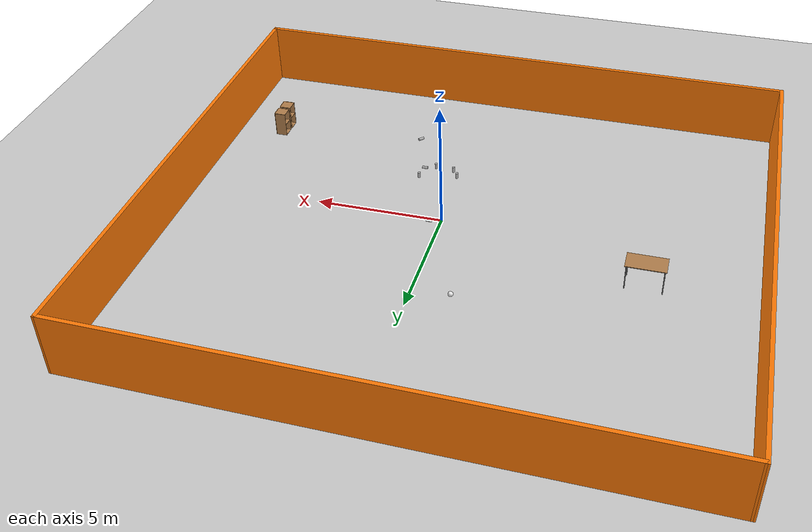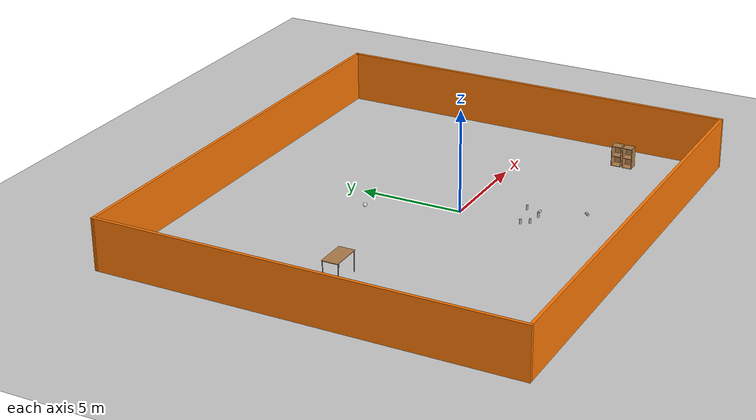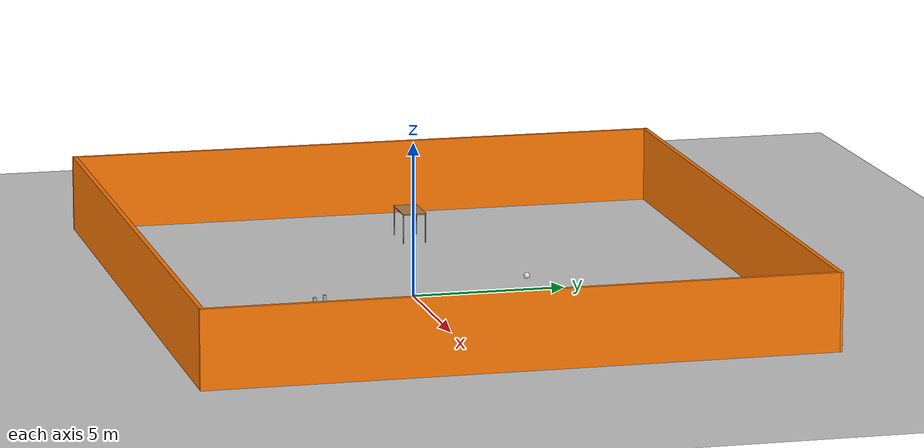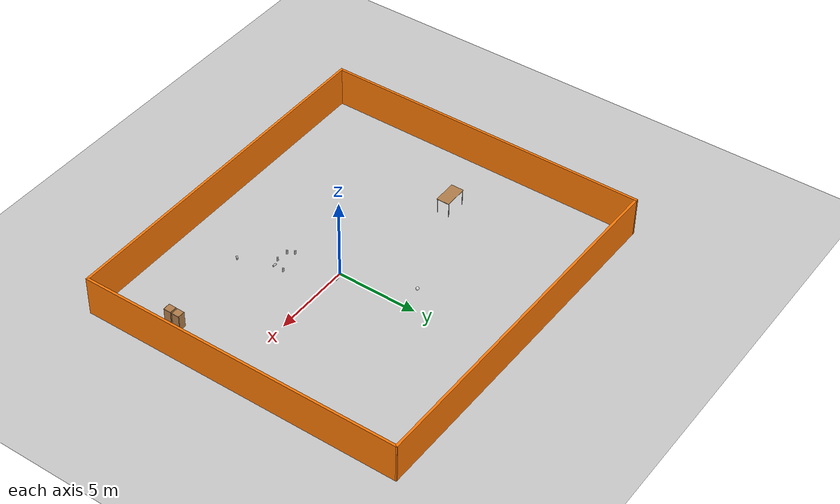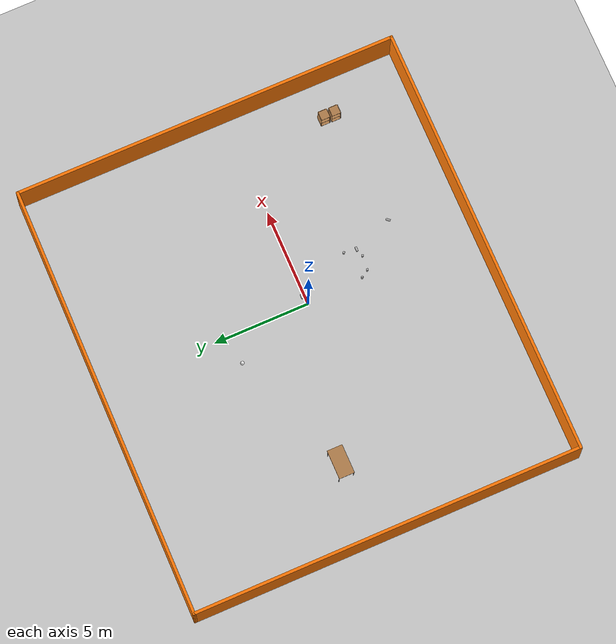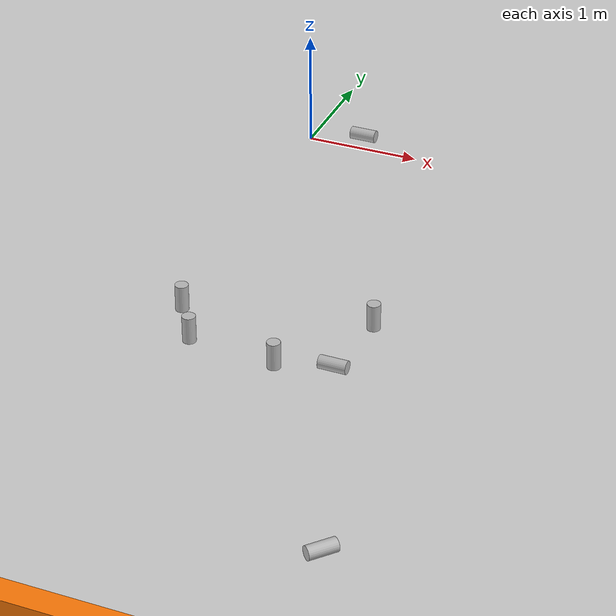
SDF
<sdf version="1.6">
 <world name="default">
  <plugin name="hello" filename="libhello.so"/>
  <light name="sun" type="directional">
   <pose>0 0 10 0 -0 0</pose>
   <diffuse>0.8 0.8 0.8 1</diffuse>
   <specular>0.2 0.2 0.2 1</specular>
   <attenuation>
    <range>1000</range>
    <constant>0.9</constant>
    <linear>0.01</linear>
    <quadratic>0.001</quadratic>
   </attenuation>
   <direction>-0.5 0.1 -0.9</direction>
  </light>
  <model name="ground_plane">
   <static>1</static>
   <link name="link">
    <collision name="collision">
     <geometry><plane><normal>0 0 1</normal><size>100 100</size></plane></geometry>
     <surface>
      <contact><collide_bitmask>65535</collide_bitmask></contact>
      <friction><ode><mu>100</mu><mu2>50</mu2></ode></friction>
     </surface>
    </collision>
    <visual name="visual">
     <cast_shadows>0</cast_shadows>
     <geometry><plane><normal>0 0 1</normal><size>100 100</size></plane></geometry>
     <material>
      <script><uri>file://media/materials/scripts/gazebo.material</uri><name>Gazebo/Grey</name></script>
     </material>
    </visual>
   </link>
  </model>
  <gravity>0 0 -9.8</gravity>
  <magnetic_field>6e-06 2.3e-05 -4.2e-05</magnetic_field>
  <atmosphere type="adiabatic"/>
  <physics name="default_physics" default="0" type="ode">
   <max_step_size>0.001</max_step_size>
   <real_time_factor>1</real_time_factor>
   <real_time_update_rate>1000</real_time_update_rate>
  </physics>
  <scene><ambient>0.4 0.4 0.4 1</ambient><background>0.7 0.7 0.7 1</background><shadows>1</shadows></scene>
  <spherical_coordinates>
   <surface_model>EARTH_WGS84</surface_model>
   <latitude_deg>0</latitude_deg>
   <longitude_deg>0</longitude_deg>
   <elevation>0</elevation>
   <heading_deg>0</heading_deg>
  </spherical_coordinates>
  <model name="table">
   <static>1</static>
   <link name="link">
    <collision name="surface">
     <pose>0 0 1 0 -0 0</pose>
     <geometry><box><size>1.5 0.8 0.03</size></box></geometry>
     <surface><friction><ode><mu>0.6</mu><mu2>0.6</mu2></ode></friction></surface>
    </collision>
    <visual name="visual1">
     <pose>0 0 1 0 -0 0</pose>
     <geometry><box><size>1.5 0.8 0.03</size></box></geometry>
     <material>
      <script><uri>file://media/materials/scripts/gazebo.material</uri><name>Gazebo/Wood</name></script>
     </material>
    </visual>
    <collision name="front_left_leg">
     <pose>0.68 0.38 0.5 0 -0 0</pose>
     <geometry><cylinder><radius>0.02</radius><length>1</length></cylinder></geometry>
    </collision>
    <visual name="front_left_leg">
     <pose>0.68 0.38 0.5 0 -0 0</pose>
     <geometry><cylinder><radius>0.02</radius><length>1</length></cylinder></geometry>
     <material>
      <script><uri>file://media/materials/scripts/gazebo.material</uri><name>Gazebo/Grey</name></script>
     </material>
    </visual>
    <collision name="front_right_leg">
     <pose>0.68 -0.38 0.5 0 -0 0</pose>
     <geometry><cylinder><radius>0.02</radius><length>1</length></cylinder></geometry>
    </collision>
    <visual name="front_right_leg">
     <pose>0.68 -0.38 0.5 0 -0 0</pose>
     <geometry><cylinder><radius>0.02</radius><length>1</length></cylinder></geometry>
     <material>
      <script><uri>file://media/materials/scripts/gazebo.material</uri><name>Gazebo/Grey</name></script>
     </material>
    </visual>
    <collision name="back_right_leg">
     <pose>-0.68 -0.38 0.5 0 -0 0</pose>
     <geometry><cylinder><radius>0.02</radius><length>1</length></cylinder></geometry>
    </collision>
    <visual name="back_right_leg">
     <pose>-0.68 -0.38 0.5 0 -0 0</pose>
     <geometry><cylinder><radius>0.02</radius><length>1</length></cylinder></geometry>
     <material>
      <script><uri>file://media/materials/scripts/gazebo.material</uri><name>Gazebo/Grey</name></script>
     </material>
    </visual>
    <collision name="back_left_leg">
     <pose>-0.68 0.38 0.5 0 -0 0</pose>
     <geometry><cylinder><radius>0.02</radius><length>1</length></cylinder></geometry>
    </collision>
    <visual name="back_left_leg">
     <pose>-0.68 0.38 0.5 0 -0 0</pose>
     <geometry><cylinder><radius>0.02</radius><length>1</length></cylinder></geometry>
     <material>
      <script><uri>file://media/materials/scripts/gazebo.material</uri><name>Gazebo/Grey</name></script>
     </material>
    </visual>
   </link>
   <pose>-8.01169 1.79925 0 0 -0 0</pose>
  </model>
  <model name="beer">
   <link name="link">
    <pose>0 0 0.115 0 -0 0</pose>
    <inertial>
     <mass>0.39</mass>
     <inertia><ixx>0.00058</ixx><ixy>0</ixy><ixz>0</ixz><iyy>0.00058</iyy><iyz>0</iyz><izz>0.00019</izz></inertia>
    </inertial>
    <collision name="collision">
     <geometry><cylinder><radius>0.055</radius><length>0.23</length></cylinder></geometry>
    </collision>
    <visual name="visual">
     <geometry><cylinder><radius>0.055</radius><length>0.23</length></cylinder></geometry>
     <material>
      <script>
       <uri>model://beer/materials/scripts</uri>
       <uri>model://beer/materials/textures</uri>
       <name>Beer/Diffuse</name>
      </script>
     </material>
    </visual>
   </link>
   <pose>0.387083 -3.31909 -7e-06 -1e-06 -0 -3e-05</pose>
  </model>
  <model name="beer_0">
   <link name="link">
    <pose>0 0 0.115 0 -0 0</pose>
    <inertial>
     <mass>0.39</mass>
     <inertia><ixx>0.00058</ixx><ixy>0</ixy><ixz>0</ixz><iyy>0.00058</iyy><iyz>0</iyz><izz>0.00019</izz></inertia>
    </inertial>
    <collision name="collision">
     <geometry><cylinder><radius>0.055</radius><length>0.23</length></cylinder></geometry>
    </collision>
    <visual name="visual">
     <geometry><cylinder><radius>0.055</radius><length>0.23</length></cylinder></geometry>
     <material>
      <script>
       <uri>model://beer/materials/scripts</uri>
       <uri>model://beer/materials/textures</uri>
       <name>Beer/Diffuse</name>
      </script>
     </material>
    </visual>
   </link>
   <pose>0.143637 -2.94233 0.000195 0.001502 0.003224 0.795676</pose>
  </model>
  <model name="beer_1">
   <link name="link">
    <pose>0 0 0.115 0 -0 0</pose>
    <inertial>
     <mass>0.39</mass>
     <inertia><ixx>0.00058</ixx><ixy>0</ixy><ixz>0</ixz><iyy>0.00058</iyy><iyz>0</iyz><izz>0.00019</izz></inertia>
    </inertial>
    <collision name="collision">
     <geometry><cylinder><radius>0.055</radius><length>0.23</length></cylinder></geometry>
    </collision>
    <visual name="visual">
     <geometry><cylinder><radius>0.055</radius><length>0.23</length></cylinder></geometry>
     <material>
      <script>
       <uri>model://beer/materials/scripts</uri>
       <uri>model://beer/materials/textures</uri>
       <name>Beer/Diffuse</name>
      </script>
     </material>
    </visual>
   </link>
   <pose>2.39871 -5.20326 0.055 -1.57079 0.550973 2.41095</pose>
  </model>
  <model name="beer_2">
   <link name="link">
    <pose>0 0 0.115 0 -0 0</pose>
    <inertial>
     <mass>0.39</mass>
     <inertia><ixx>0.00058</ixx><ixy>0</ixy><ixz>0</ixz><iyy>0.00058</iyy><iyz>0</iyz><izz>0.00019</izz></inertia>
    </inertial>
    <collision name="collision">
     <geometry><cylinder><radius>0.055</radius><length>0.23</length></cylinder></geometry>
    </collision>
    <visual name="visual">
     <geometry><cylinder><radius>0.055</radius><length>0.23</length></cylinder></geometry>
     <material>
      <script>
       <uri>model://beer/materials/scripts</uri>
       <uri>model://beer/materials/textures</uri>
       <name>Beer/Diffuse</name>
      </script>
     </material>
    </visual>
   </link>
   <pose>1.4562 -3.26252 0.055 3.12357 1.57044 3.12357</pose>
  </model>
  <model name="beer_3">
   <link name="link">
    <pose>0 0 0.115 0 -0 0</pose>
    <inertial>
     <mass>0.39</mass>
     <inertia><ixx>0.00058</ixx><ixy>0</ixy><ixz>0</ixz><iyy>0.00058</iyy><iyz>0</iyz><izz>0.00019</izz></inertia>
    </inertial>
    <collision name="collision">
     <geometry><cylinder><radius>0.055</radius><length>0.23</length></cylinder></geometry>
    </collision>
    <visual name="visual">
     <geometry><cylinder><radius>0.055</radius><length>0.23</length></cylinder></geometry>
     <material>
      <script>
       <uri>model://beer/materials/scripts</uri>
       <uri>model://beer/materials/textures</uri>
       <name>Beer/Diffuse</name>
      </script>
     </material>
    </visual>
   </link>
   <pose>1.64254 -2.61385 -7e-06 -1e-06 -0 -3e-05</pose>
  </model>
  <model name="beer_4">
   <link name="link">
    <pose>0 0 0.115 0 -0 0</pose>
    <inertial>
     <mass>0.39</mass>
     <inertia><ixx>0.00058</ixx><ixy>0</ixy><ixz>0</ixz><iyy>0.00058</iyy><iyz>0</iyz><izz>0.00019</izz></inertia>
    </inertial>
    <collision name="collision">
     <geometry><cylinder><radius>0.055</radius><length>0.23</length></cylinder></geometry>
    </collision>
    <visual name="visual">
     <geometry><cylinder><radius>0.055</radius><length>0.23</length></cylinder></geometry>
     <material>
      <script>
       <uri>model://beer/materials/scripts</uri>
       <uri>model://beer/materials/textures</uri>
       <name>Beer/Diffuse</name>
      </script>
     </material>
    </visual>
   </link>
   <pose>0.335494 0.156564 0.054918 1.57021 0.919648 1.57033</pose>
  </model>
  <model name="beer_5">
   <link name="link">
    <pose>0 0 0.115 0 -0 0</pose>
    <inertial>
     <mass>0.39</mass>
     <inertia><ixx>0.00058</ixx><ixy>0</ixy><ixz>0</ixz><iyy>0.00058</iyy><iyz>0</iyz><izz>0.00019</izz></inertia>
    </inertial>
    <collision name="collision">
     <geometry><cylinder><radius>0.055</radius><length>0.23</length></cylinder></geometry>
    </collision>
    <visual name="visual">
     <geometry><cylinder><radius>0.055</radius><length>0.23</length></cylinder></geometry>
     <material>
      <script>
       <uri>model://beer/materials/scripts</uri>
       <uri>model://beer/materials/textures</uri>
       <name>Beer/Diffuse</name>
      </script>
     </material>
    </visual>
   </link>
   <pose>1.13479 -3.39296 -7e-06 -1e-06 -0 -3e-05</pose>
  </model>
  <model name="cabinet">
   <static>1</static>
   <link name="cabinet_bottom_plate">
    <inertial>
     <pose>0 0 -1 0 -0 0</pose>
     <inertia><ixx>2.05</ixx><ixy>0</ixy><ixz>0</ixz><iyy>2.05</iyy><iyz>0</iyz><izz>2.05</izz></inertia>
     <mass>25</mass>
    </inertial>
    <collision name="cabinet_bottom_plate_geom">
     <pose>0 0 0.01 0 -0 0</pose>
     <geometry><box><size>0.45 0.45 0.02</size></box></geometry>
    </collision>
    <visual name="cabinet_bottom_plate_geom_visual">
     <pose>0 0 0.01 0 -0 0</pose>
     <geometry><box><size>0.45 0.45 0.02</size></box></geometry>
     <material>
      <script><uri>file://media/materials/scripts/gazebo.material</uri><name>Gazebo/Wood</name></script>
     </material>
    </visual>
    <collision name="cabinet_bottom_plate_geom_cabinet_back_plate">
     <pose>0.235 0 0.51 0 -0 0</pose>
     <geometry><box><size>0.02 0.45 1.02</size></box></geometry>
    </collision>
    <visual name="cabinet_bottom_plate_geom_cabinet_back_plate_visual">
     <pose>0.235 0 0.51 0 -0 0</pose>
     <geometry><box><size>0.02 0.45 1.02</size></box></geometry>
     <material>
      <script><uri>file://media/materials/scripts/gazebo.material</uri><name>Gazebo/Wood</name></script>
     </material>
    </visual>
    <collision name="cabinet_bottom_plate_geom_cabinet_left_plate">
     <pose>0 0.235 0.51 0 -0 0</pose>
     <geometry><box><size>0.45 0.02 1.02</size></box></geometry>
    </collision>
    <visual name="cabinet_bottom_plate_geom_cabinet_left_plate_visual">
     <pose>0 0.235 0.51 0 -0 0</pose>
     <geometry><box><size>0.45 0.02 1.02</size></box></geometry>
     <material>
      <script><uri>file://media/materials/scripts/gazebo.material</uri><name>Gazebo/Wood</name></script>
     </material>
    </visual>
    <collision name="cabinet_bottom_plate_geom_cabinet_middle_plate">
     <pose>0 0 0.51 0 -0 0</pose>
     <geometry><box><size>0.45 0.45 0.02</size></box></geometry>
    </collision>
    <visual name="cabinet_bottom_plate_geom_cabinet_middle_plate_visual">
     <pose>0 0 0.51 0 -0 0</pose>
     <geometry><box><size>0.45 0.45 0.02</size></box></geometry>
     <material>
      <script><uri>file://media/materials/scripts/gazebo.material</uri><name>Gazebo/Wood</name></script>
     </material>
    </visual>
    <collision name="cabinet_bottom_plate_geom_cabinet_right_plate">
     <pose>0 -0.235 0.51 0 -0 0</pose>
     <geometry><box><size>0.45 0.02 1.02</size></box></geometry>
    </collision>
    <visual name="cabinet_bottom_plate_geom_cabinet_right_plate_visual">
     <pose>0 -0.235 0.51 0 -0 0</pose>
     <geometry><box><size>0.45 0.02 1.02</size></box></geometry>
     <material>
      <script><uri>file://media/materials/scripts/gazebo.material</uri><name>Gazebo/Wood</name></script>
     </material>
    </visual>
    <collision name="cabinet_bottom_plate_geom_cabinet_top_plate">
     <pose>0 0 1.01 0 -0 0</pose>
     <geometry><box><size>0.45 0.45 0.02</size></box></geometry>
    </collision>
    <visual name="cabinet_bottom_plate_geom_cabinet_top_plate_visual">
     <pose>0 0 1.01 0 -0 0</pose>
     <geometry><box><size>0.45 0.45 0.02</size></box></geometry>
     <material>
      <script><uri>file://media/materials/scripts/gazebo.material</uri><name>Gazebo/Wood</name></script>
     </material>
    </visual>
   </link>
   <pose>8.23308 -5.00403 0 0 -0 0</pose>
  </model>
  <model name="cabinet_clone">
   <static>1</static>
   <link name="cabinet_bottom_plate">
    <inertial>
     <pose>0 0 -1 0 -0 0</pose>
     <inertia><ixx>2.05</ixx><ixy>0</ixy><ixz>0</ixz><iyy>2.05</iyy><iyz>0</iyz><izz>2.05</izz></inertia>
     <mass>25</mass>
    </inertial>
    <collision name="cabinet_bottom_plate_geom">
     <pose>0 0 0.01 0 -0 0</pose>
     <geometry><box><size>0.45 0.45 0.02</size></box></geometry>
    </collision>
    <visual name="cabinet_bottom_plate_geom_visual">
     <pose>0 0 0.01 0 -0 0</pose>
     <geometry><box><size>0.45 0.45 0.02</size></box></geometry>
     <material>
      <script><uri>file://media/materials/scripts/gazebo.material</uri><name>Gazebo/Wood</name></script>
     </material>
    </visual>
    <collision name="cabinet_bottom_plate_geom_cabinet_back_plate">
     <pose>0.235 0 0.51 0 -0 0</pose>
     <geometry><box><size>0.02 0.45 1.02</size></box></geometry>
    </collision>
    <visual name="cabinet_bottom_plate_geom_cabinet_back_plate_visual">
     <pose>0.235 0 0.51 0 -0 0</pose>
     <geometry><box><size>0.02 0.45 1.02</size></box></geometry>
     <material>
      <script><uri>file://media/materials/scripts/gazebo.material</uri><name>Gazebo/Wood</name></script>
     </material>
    </visual>
    <collision name="cabinet_bottom_plate_geom_cabinet_left_plate">
     <pose>0 0.235 0.51 0 -0 0</pose>
     <geometry><box><size>0.45 0.02 1.02</size></box></geometry>
    </collision>
    <visual name="cabinet_bottom_plate_geom_cabinet_left_plate_visual">
     <pose>0 0.235 0.51 0 -0 0</pose>
     <geometry><box><size>0.45 0.02 1.02</size></box></geometry>
     <material>
      <script><uri>file://media/materials/scripts/gazebo.material</uri><name>Gazebo/Wood</name></script>
     </material>
    </visual>
    <collision name="cabinet_bottom_plate_geom_cabinet_middle_plate">
     <pose>0 0 0.51 0 -0 0</pose>
     <geometry><box><size>0.45 0.45 0.02</size></box></geometry>
    </collision>
    <visual name="cabinet_bottom_plate_geom_cabinet_middle_plate_visual">
     <pose>0 0 0.51 0 -0 0</pose>
     <geometry><box><size>0.45 0.45 0.02</size></box></geometry>
     <material>
      <script><uri>file://media/materials/scripts/gazebo.material</uri><name>Gazebo/Wood</name></script>
     </material>
    </visual>
    <collision name="cabinet_bottom_plate_geom_cabinet_right_plate">
     <pose>0 -0.235 0.51 0 -0 0</pose>
     <geometry><box><size>0.45 0.02 1.02</size></box></geometry>
    </collision>
    <visual name="cabinet_bottom_plate_geom_cabinet_right_plate_visual">
     <pose>0 -0.235 0.51 0 -0 0</pose>
     <geometry><box><size>0.45 0.02 1.02</size></box></geometry>
     <material>
      <script><uri>file://media/materials/scripts/gazebo.material</uri><name>Gazebo/Wood</name></script>
     </material>
    </visual>
    <collision name="cabinet_bottom_plate_geom_cabinet_top_plate">
     <pose>0 0 1.01 0 -0 0</pose>
     <geometry><box><size>0.45 0.45 0.02</size></box></geometry>
    </collision>
    <visual name="cabinet_bottom_plate_geom_cabinet_top_plate_visual">
     <pose>0 0 1.01 0 -0 0</pose>
     <geometry><box><size>0.45 0.45 0.02</size></box></geometry>
     <material>
      <script><uri>file://media/materials/scripts/gazebo.material</uri><name>Gazebo/Wood</name></script>
     </material>
    </visual>
   </link>
   <pose>8.24574 -4.43963 0 0 -0 0</pose>
  </model>
  <model name="my_ball">
   <link name="link">
    <inertial>
     <mass>1</mass>
     <inertia><ixx>0.1</ixx><ixy>0</ixy><ixz>0</ixz><iyy>0.1</iyy><iyz>0</iyz><izz>0.1</izz></inertia>
    </inertial>
    <visual name="visual">
     <geometry><sphere><radius>0.1</radius></sphere></geometry>
     <material>
      <script><name>Gazebo/White</name><uri>file://media/materials/scripts/gazebo.material</uri></script>
      <shader type="pixel"><normal_map>__default__</normal_map></shader>
      <ambient>1 1 1 1</ambient>
      <diffuse>1 1 1 1</diffuse>
      <specular>1 1 1 1</specular>
      <emissive>1 1 1 1</emissive>
     </material>
    </visual>
    <collision name="collision">
     <geometry><sphere><radius>0.1</radius></sphere></geometry>
     <surface>
      <friction>
       <ode><mu>1</mu><mu2>1</mu2><fdir1>0 0 0</fdir1><slip1>0</slip1><slip2>0</slip2></ode>
       <torsional>
        <coefficient>1</coefficient>
        <patch_radius>0</patch_radius>
        <surface_radius>0</surface_radius>
        <use_patch_radius>1</use_patch_radius>
        <ode><slip>0</slip></ode>
       </torsional>
      </friction>
      <bounce><restitution_coefficient>0</restitution_coefficient><threshold>1e+06</threshold></bounce>
      <contact>
       <collide_without_contact>0</collide_without_contact>
       <collide_without_contact_bitmask>1</collide_without_contact_bitmask>
       <collide_bitmask>1</collide_bitmask>
       <ode>
        <soft_cfm>0</soft_cfm>
        <soft_erp>0.2</soft_erp>
        <kp>1e+13</kp>
        <kd>1</kd>
        <max_vel>0.01</max_vel>
        <min_depth>0</min_depth>
       </ode>
       <bullet>
        <split_impulse>1</split_impulse>
        <split_impulse_penetration_threshold>-0.01</split_impulse_penetration_threshold>
        <soft_cfm>0</soft_cfm>
        <soft_erp>0.2</soft_erp>
        <kp>1e+13</kp>
        <kd>1</kd>
       </bullet>
      </contact>
     </surface>
    </collision>
   </link>
   <static>0</static>
   <pose>-1.45865 4.14127 0.1 0 -0 0</pose>
  </model>
  <model name="simple_building_0">
   <pose>-1.0124 1.17918 0 0 -0 0</pose>
   <link name="Wall_15">
    <collision name="Wall_15_Collision">
     <geometry><box><size>20.25 0.15 2.5</size></box></geometry>
     <pose>0 0 1.25 0 -0 0</pose>
    </collision>
    <visual name="Wall_15_Visual">
     <pose>0 0 1.25 0 -0 0</pose>
     <geometry><box><size>20.25 0.15 2.5</size></box></geometry>
     <material>
      <script><uri>file://media/materials/scripts/gazebo.material</uri><name>Gazebo/Grey</name></script>
      <ambient>0.996078 0.47451 0.0196078 1</ambient>
     </material>
     <meta><layer>0</layer></meta>
    </visual>
    <pose>-11.175 -0.000416 0 0 0 -1.5708</pose>
   </link>
   <link name="Wall_16">
    <collision name="Wall_16_Collision">
     <geometry><box><size>22.5 0.15 2.5</size></box></geometry>
     <pose>0 0 1.25 0 -0 0</pose>
    </collision>
    <visual name="Wall_16_Visual">
     <pose>0 0 1.25 0 -0 0</pose>
     <geometry><box><size>22.5 0.15 2.5</size></box></geometry>
     <material>
      <script><uri>file://media/materials/scripts/gazebo.material</uri><name>Gazebo/Grey</name></script>
      <ambient>0.996078 0.47451 0.0196078 1</ambient>
     </material>
     <meta><layer>0</layer></meta>
    </visual>
    <pose>0 -10.0504 0 0 -0 0</pose>
   </link>
   <link name="Wall_17">
    <collision name="Wall_17_Collision">
     <geometry><box><size>20 0.15 2.5</size></box></geometry>
     <pose>0 0 1.25 0 -0 0</pose>
    </collision>
    <visual name="Wall_17_Visual">
     <pose>0 0 1.25 0 -0 0</pose>
     <geometry><box><size>20 0.15 2.5</size></box></geometry>
     <material>
      <script><uri>file://media/materials/scripts/gazebo.material</uri><name>Gazebo/Grey</name></script>
      <ambient>0.996078 0.47451 0.0196078 1</ambient>
     </material>
     <meta><layer>0</layer></meta>
    </visual>
    <pose>11.175 -0.125416 0 0 -0 1.5708</pose>
   </link>
   <link name="Wall_18">
    <collision name="Wall_18_Collision">
     <geometry><box><size>22.5014 0.15 2.5</size></box></geometry>
     <pose>0 0 1.25 0 -0 0</pose>
    </collision>
    <visual name="Wall_18_Visual">
     <pose>0 0 1.25 0 -0 0</pose>
     <geometry><box><size>22.5014 0.15 2.5</size></box></geometry>
     <material>
      <script><uri>file://media/materials/scripts/gazebo.material</uri><name>Gazebo/Grey</name></script>
      <ambient>0.996078 0.47451 0.0196078 1</ambient>
     </material>
     <meta><layer>0</layer></meta>
    </visual>
    <pose>0 9.92458 0 0 -0 3.13041</pose>
   </link>
   <static>1</static>
  </model>
 </world>
</sdf>
